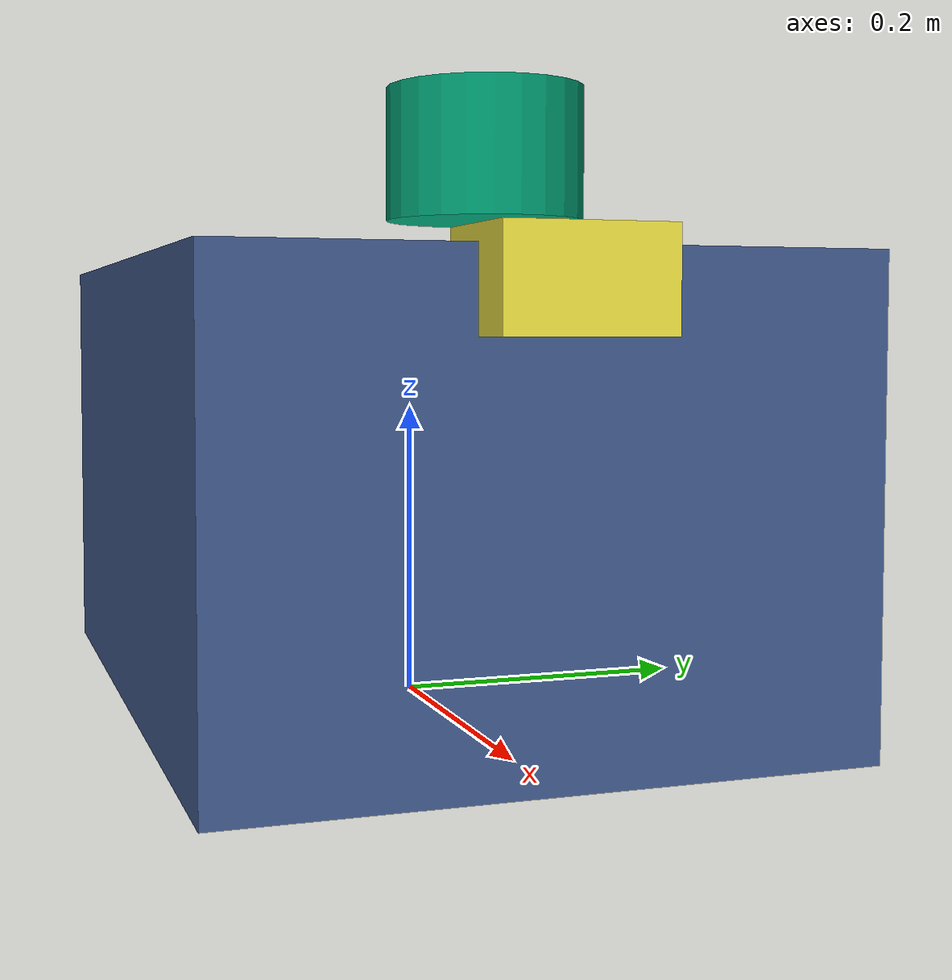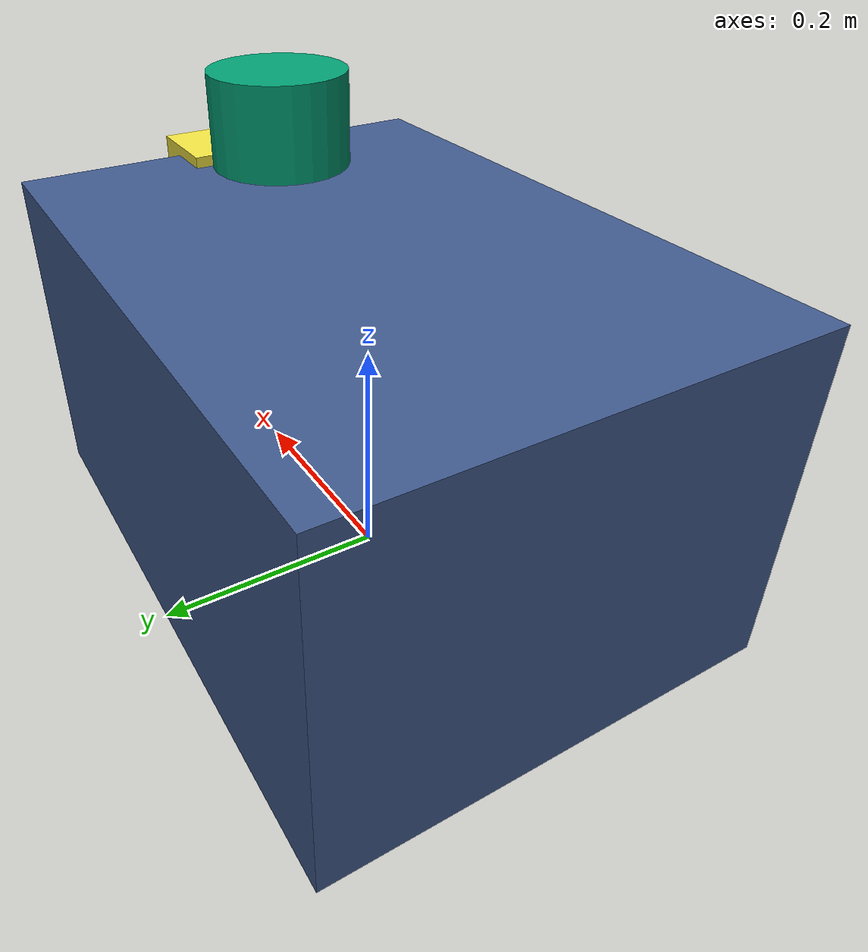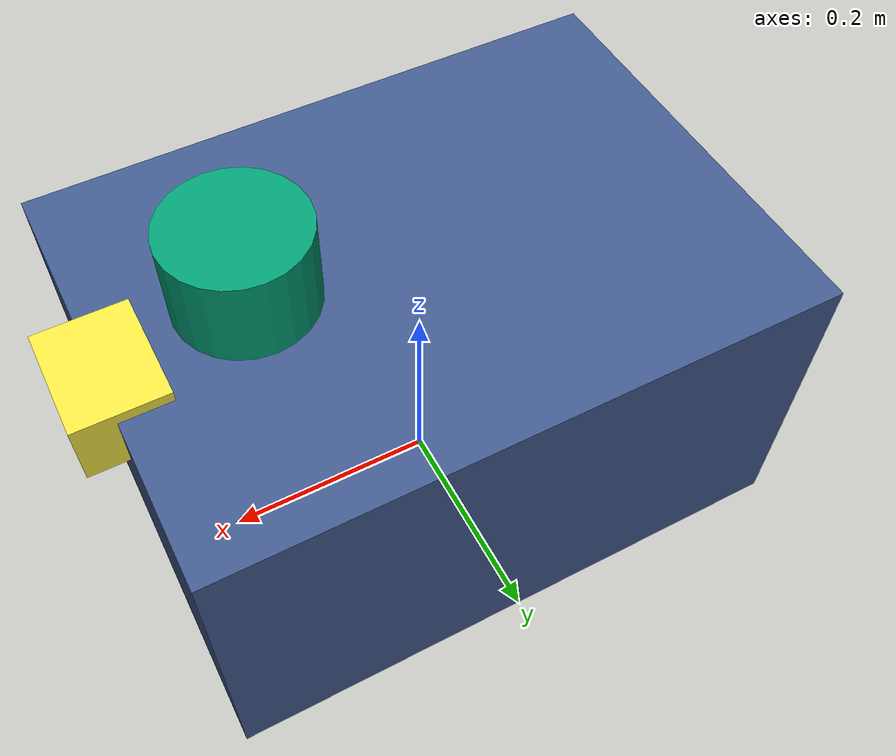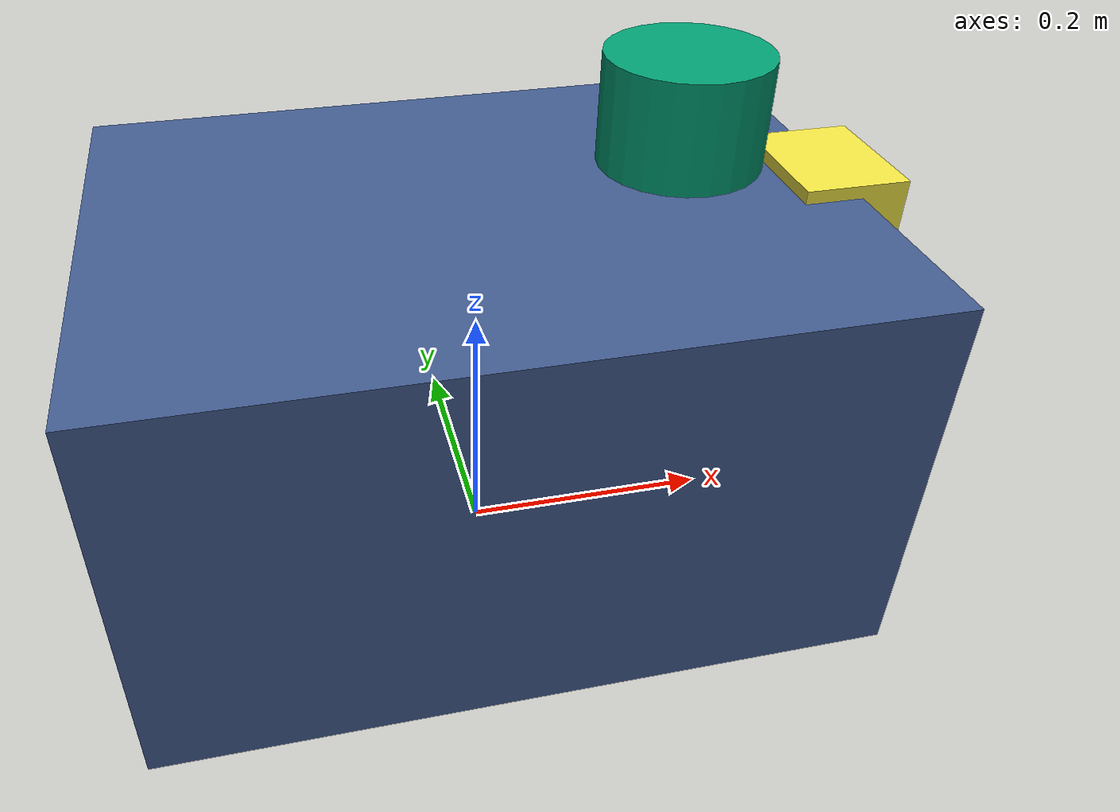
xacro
<?xml version="1.0"?>

<robot xmlns:xacro="http://www.ros.org/wiki/xacro" name="patrol_robot">

  <xacro:arg name="prefix" default=""/>

  <material name="body_color">
    <color rgba="0.25 0.35 0.55 1.0"/>
  </material>

  <link name="$(arg prefix)base_footprint"/>

  <link name="$(arg prefix)base_link">
    <visual>
      <origin xyz="0 0 0.15"/>
      <geometry>
        <box size="0.55 0.40 0.30"/>
      </geometry>
      <material name="body_color"/>
    </visual>

    <collision>
      <origin xyz="0 0 0.15"/>
      <geometry>
        <box size="0.55 0.40 0.30"/>
      </geometry>
    </collision>

    <inertial>
      <origin xyz="0 0 0.15"/>
      <mass value="20.0"/>
      <inertia
        ixx="0.416"
        ixy="0.0"
        ixz="0.0"
        iyy="0.654"
        iyz="0.0"
        izz="0.802"/>
    </inertial>
  </link>

  <joint name="$(arg prefix)base_footprint_joint" type="fixed">
    <parent link="$(arg prefix)base_footprint"/>
    <child link="$(arg prefix)base_link"/>
    <origin xyz="0 0 0"/>
  </joint>

  <link name="$(arg prefix)lidar_link">
    <visual>
      <geometry>
        <cylinder radius="0.06" length="0.08"/>
      </geometry>
    </visual>
  </link>

  <joint name="$(arg prefix)lidar_joint" type="fixed">
    <parent link="$(arg prefix)base_link"/>
    <child link="$(arg prefix)lidar_link"/>
    <origin xyz="0.15 0 0.36"/>
  </joint>

  <link name="$(arg prefix)camera_link">
    <visual>
      <geometry>
        <box size="0.08 0.10 0.06"/>
      </geometry>
    </visual>
  </link>

  <joint name="$(arg prefix)camera_joint" type="fixed">
    <parent link="$(arg prefix)base_link"/>
    <child link="$(arg prefix)camera_link"/>
    <origin xyz="0.27 0 0.28"/>
  </joint>

</robot>
